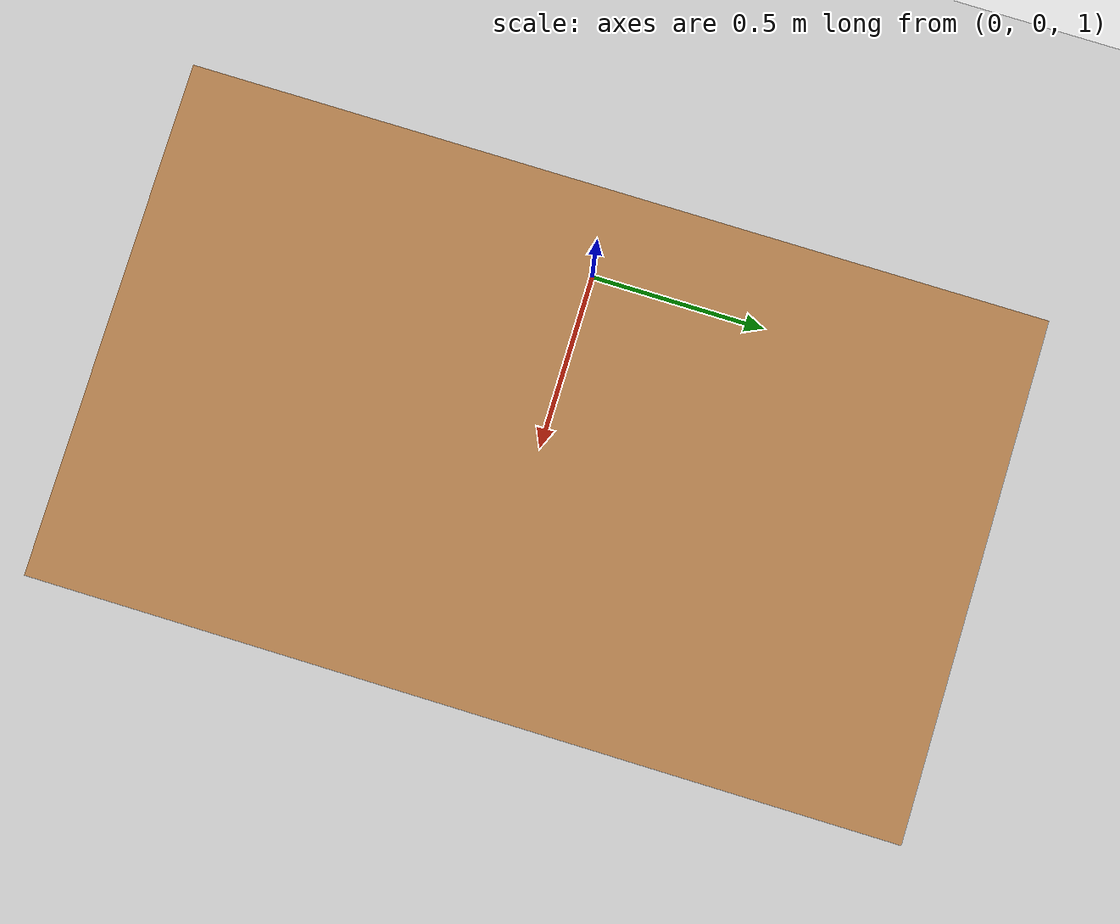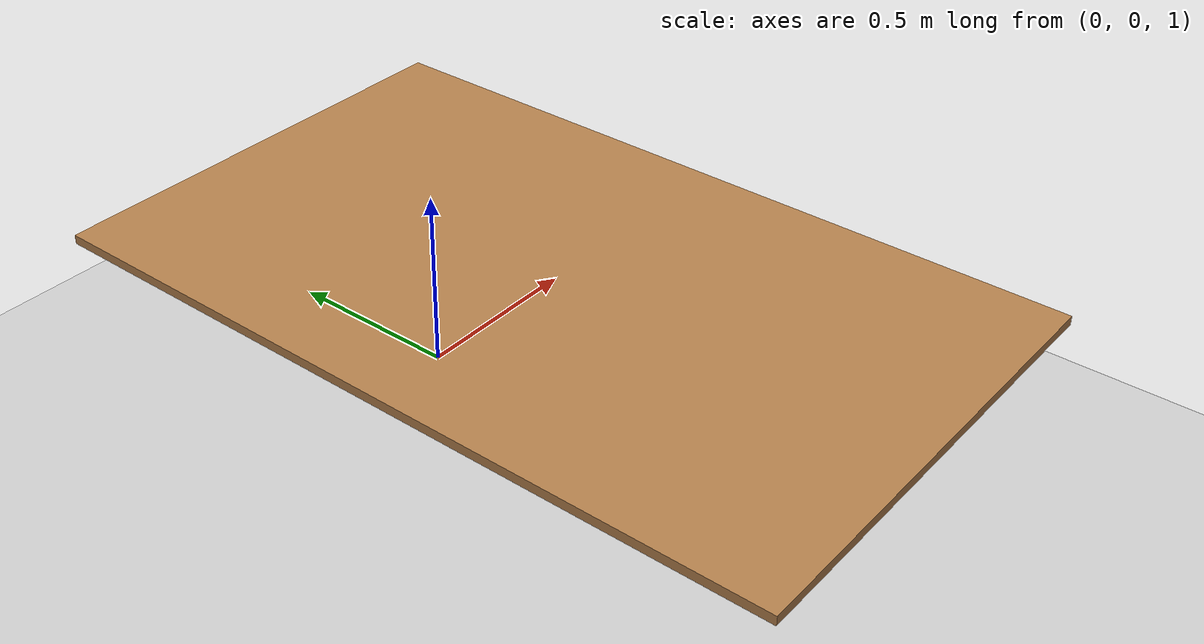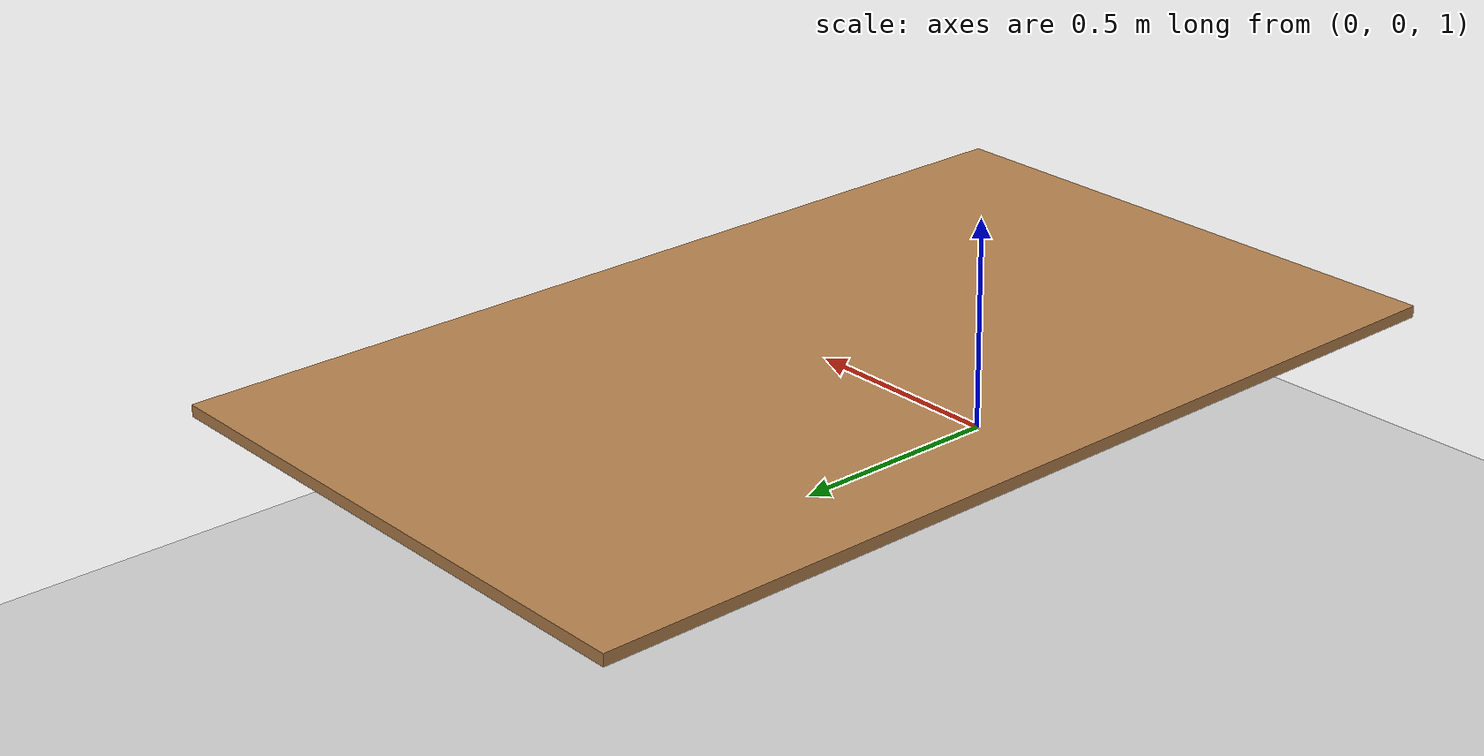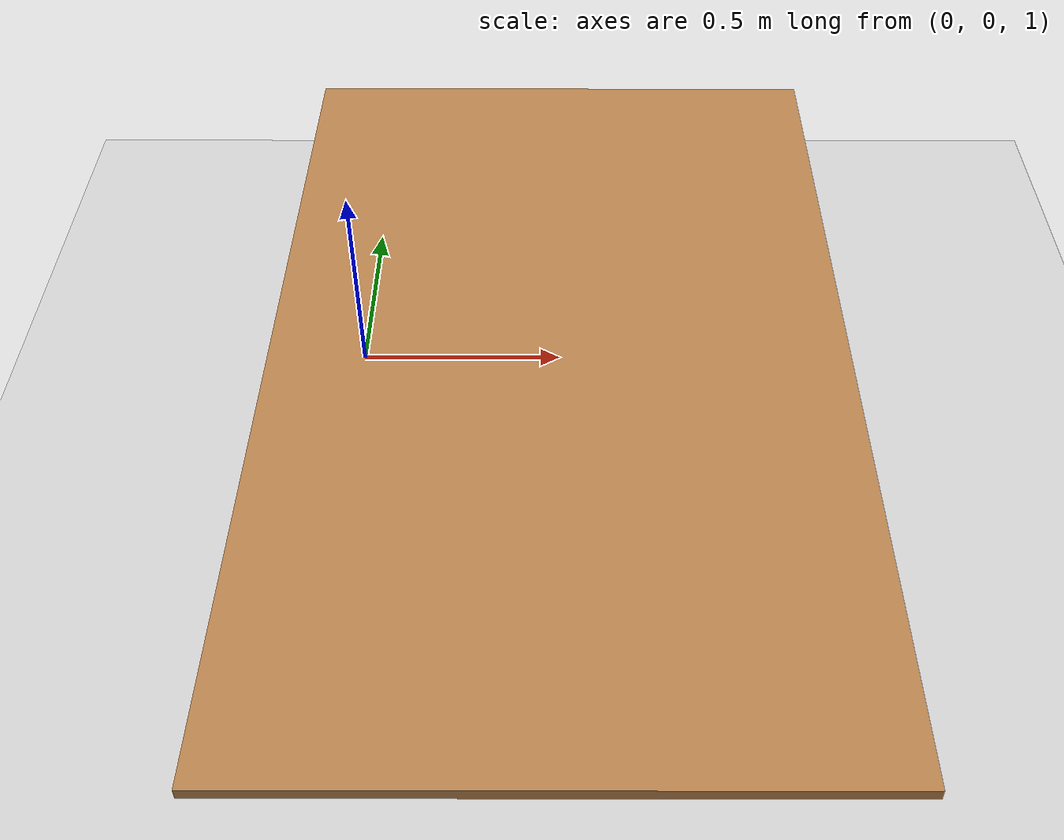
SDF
<?xml version="1.0" ?>
<sdf version="1.6">
  <world name="graspnet_world">

    <!-- Physics settings -->
    <physics name="default_physics" default="0" type="ode">
      <gravity>0 0 -9.8066</gravity>
      <ode>
        <solver>
          <type>quick</type>
          <iters>150</iters>
          <sor>1.3</sor>
        </solver>
        <constraints>
          <cfm>0.00001</cfm>
          <erp>0.2</erp>
          <contact_max_correcting_vel>1000</contact_max_correcting_vel>
          <contact_surface_layer>0.01</contact_surface_layer>
        </constraints>
      </ode>
      <max_step_size>0.004</max_step_size>
      <real_time_factor>1.0</real_time_factor>
      <real_time_update_rate>250</real_time_update_rate>
    </physics>

    <!-- Lighting -->
    <include>
      <uri>model://sun</uri>
    </include>

    <!-- Ground plane -->
    <include>
      <uri>model://ground_plane</uri>
    </include>

    <!-- Table for grasping experiments -->
    <model name="table">
      <static>true</static>
      <link name="link">
        <collision name="surface">
          <pose>0 0 1 0 0 0</pose>
          <geometry>
            <box>
              <size>1.5 2.5 0.03</size>
            </box>
          </geometry>
        </collision>
        <visual name="visual1">
          <pose>0 0 1 0 0 0</pose>
          <geometry>
            <box>
              <size>1.5 2.5 0.03</size>
            </box>
          </geometry>
          <material>
            <script>
              <uri>file://media/materials/scripts/gazebo.material</uri>
              <name>Gazebo/Wood</name>
            </script>
          </material>
        </visual>
      </link>
      <pose>0.5 0 0 0 0 0</pose>
    </model>

    <!-- TODO: Add objects for grasping -->
    <!-- TODO: Add camera positions -->
    <!-- TODO: Add lighting setup -->

  </world>
</sdf>
